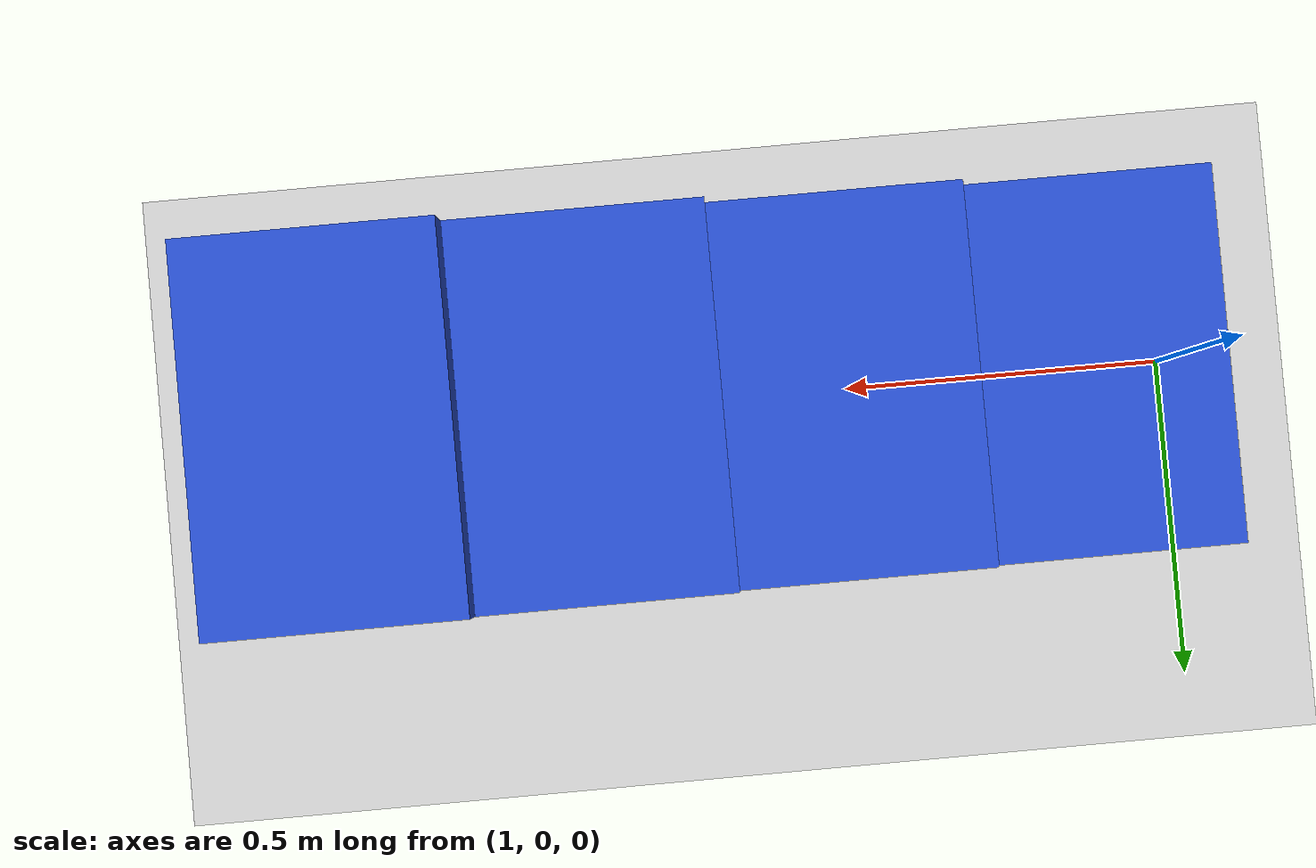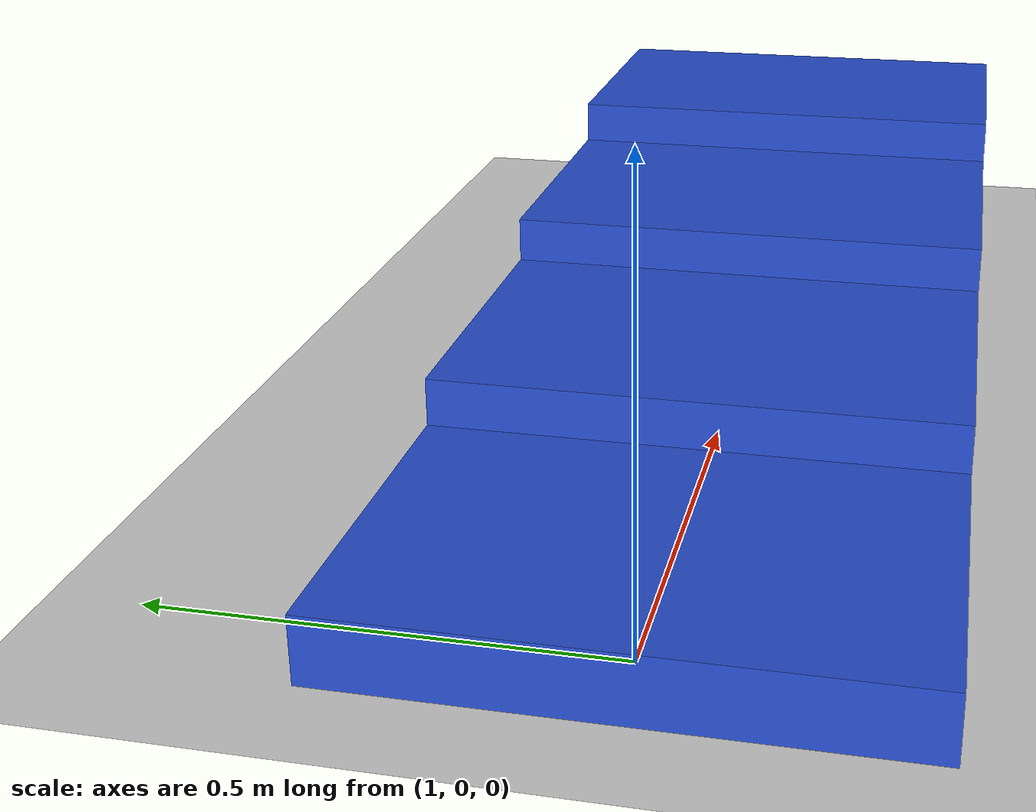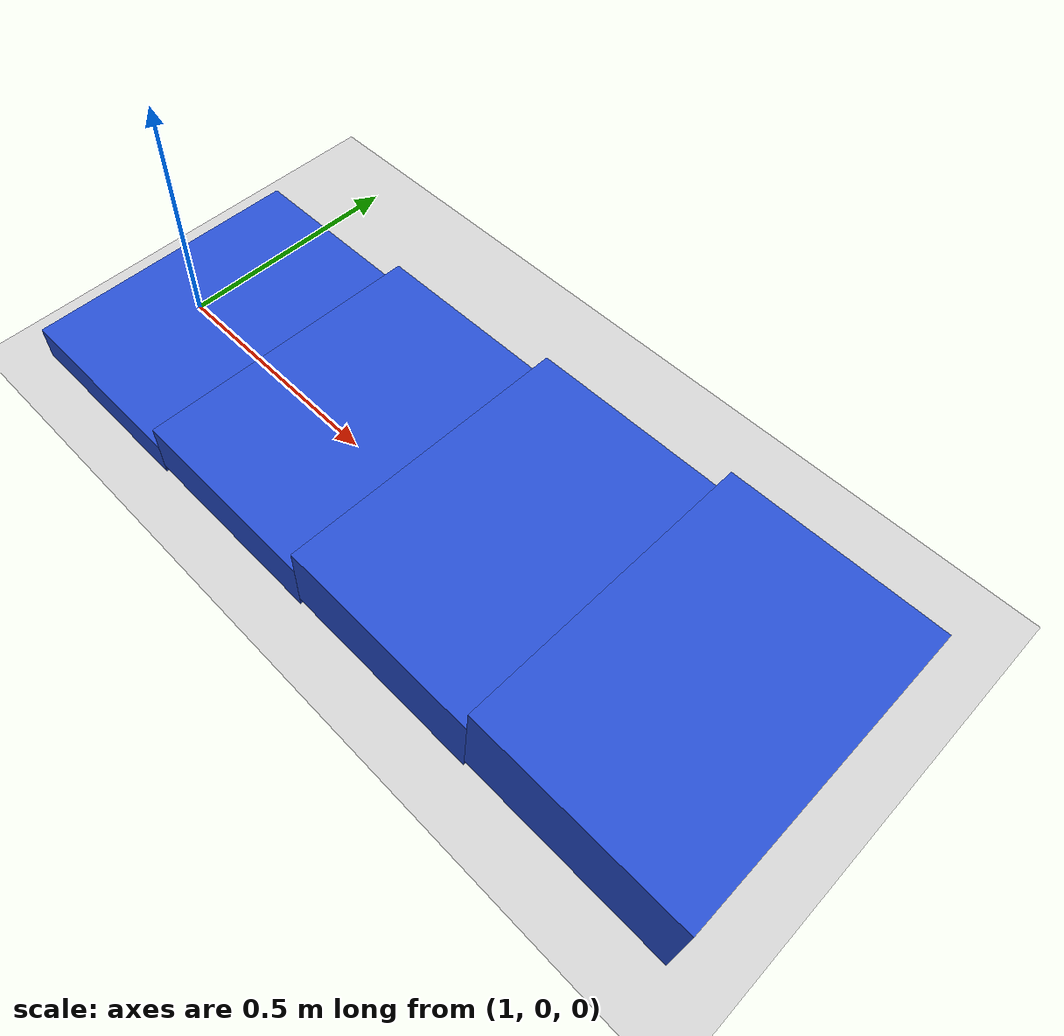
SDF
<?xml version="1.0" ?>
<sdf version="1.4">
    <world name="default">
        <physics type="ode">
            <gravity>0 0 -9.81</gravity>
            <ode>
                <solver>
                    <type>quick</type>
                    <iters>50</iters>
                    <sor>1.4</sor>
                </solver>
                <constraints>
                    <cfm>0.0</cfm>
                    <erp>0.2</erp>
                    <contact_max_correcting_vel>100.0</contact_max_correcting_vel>
                    <contact_surface_layer>0.0</contact_surface_layer>
                </constraints>
            </ode>
            <real_time_update_rate>1000</real_time_update_rate>
            <max_step_size>0.001</max_step_size>
        </physics>
        <!-- A global light source -->
        <include>
            <uri>model://sun</uri>
        </include>
        <!-- A ground plane -->
        <include>
            <uri>model://ground_plane</uri>
        </include>
        <model name="rectangle_0">
            <pose>1.100000 0.000000 0.037500 0.000000 0.000000 0.000000</pose>
            <static>true</static>
            <link name="rectangle_0_body">
                <inertial>
                    <mass>1.0</mass>
                    <inertia>
                        <ixx>1.0</ixx>
                        <ixy>0.0</ixy>
                        <ixz>0.0</ixz>
                        <iyy>1.0</iyy>
                        <iyz>0.0</iyz>
                        <izz>1.0</izz>
                    </inertia>
                </inertial>
                <collision name="collision">
                    <geometry>
                        <box>
                            <size>0.400000 0.600000 0.075000</size>
                        </box>
                    </geometry>
                    <surface>
                        <friction>
                            <ode>
                                <mu>0.9</mu>
                                <mu2>0.9</mu2>
                            </ode>
                        </friction>
                    </surface>
                </collision>
                <visual name="visual">
                    <geometry>
                        <box>
                            <size>0.400000 0.600000 0.075000</size>
                        </box>
                    </geometry>
                    <material>
                        <script>
                            <uri>file://media/materials/scripts/gazebo.material</uri>
                            <name>Gazebo/Blue</name>
                        </script>
                    </material>
                </visual>
            </link>
        </model>
        <model name="rectangle_1">
            <pose>1.500000 0.000000 0.075000 0.000000 0.000000 0.000000</pose>
            <static>true</static>
            <link name="rectangle_1_body">
                <inertial>
                    <mass>1.0</mass>
                    <inertia>
                        <ixx>1.0</ixx>
                        <ixy>0.0</ixy>
                        <ixz>0.0</ixz>
                        <iyy>1.0</iyy>
                        <iyz>0.0</iyz>
                        <izz>1.0</izz>
                    </inertia>
                </inertial>
                <collision name="collision">
                    <geometry>
                        <box>
                            <size>0.400000 0.600000 0.112500</size>
                        </box>
                    </geometry>
                    <surface>
                        <friction>
                            <ode>
                                <mu>0.9</mu>
                                <mu2>0.9</mu2>
                            </ode>
                        </friction>
                    </surface>
                </collision>
                <visual name="visual">
                    <geometry>
                        <box>
                            <size>0.400000 0.600000 0.112500</size>
                        </box>
                    </geometry>
                    <material>
                        <script>
                            <uri>file://media/materials/scripts/gazebo.material</uri>
                            <name>Gazebo/Blue</name>
                        </script>
                    </material>
                </visual>
            </link>
        </model>
        <model name="rectangle_2">
            <pose>1.900000 0.000000 0.112500 0.000000 0.000000 0.000000</pose>
            <static>true</static>
            <link name="rectangle_2_body">
                <inertial>
                    <mass>1.0</mass>
                    <inertia>
                        <ixx>1.0</ixx>
                        <ixy>0.0</ixy>
                        <ixz>0.0</ixz>
                        <iyy>1.0</iyy>
                        <iyz>0.0</iyz>
                        <izz>1.0</izz>
                    </inertia>
                </inertial>
                <collision name="collision">
                    <geometry>
                        <box>
                            <size>0.400000 0.600000 0.150000</size>
                        </box>
                    </geometry>
                    <surface>
                        <friction>
                            <ode>
                                <mu>0.9</mu>
                                <mu2>0.9</mu2>
                            </ode>
                        </friction>
                    </surface>
                </collision>
                <visual name="visual">
                    <geometry>
                        <box>
                            <size>0.400000 0.600000 0.150000</size>
                        </box>
                    </geometry>
                    <material>
                        <script>
                            <uri>file://media/materials/scripts/gazebo.material</uri>
                            <name>Gazebo/Blue</name>
                        </script>
                    </material>
                </visual>
            </link>
        </model>
        <model name="rectangle_3">
            <pose>2.300000 0.000000 0.150000 0.000000 0.000000 0.000000</pose>
            <static>true</static>
            <link name="rectangle_3_body">
                <inertial>
                    <mass>1.0</mass>
                    <inertia>
                        <ixx>1.0</ixx>
                        <ixy>0.0</ixy>
                        <ixz>0.0</ixz>
                        <iyy>1.0</iyy>
                        <iyz>0.0</iyz>
                        <izz>1.0</izz>
                    </inertia>
                </inertial>
                <collision name="collision">
                    <geometry>
                        <box>
                            <size>0.400000 0.600000 0.187500</size>
                        </box>
                    </geometry>
                    <surface>
                        <friction>
                            <ode>
                                <mu>0.9</mu>
                                <mu2>0.9</mu2>
                            </ode>
                        </friction>
                    </surface>
                </collision>
                <visual name="visual">
                    <geometry>
                        <box>
                            <size>0.400000 0.600000 0.187500</size>
                        </box>
                    </geometry>
                    <material>
                        <script>
                            <uri>file://media/materials/scripts/gazebo.material</uri>
                            <name>Gazebo/Blue</name>
                        </script>
                    </material>
                </visual>
            </link>
        </model>
    </world>
</sdf>
